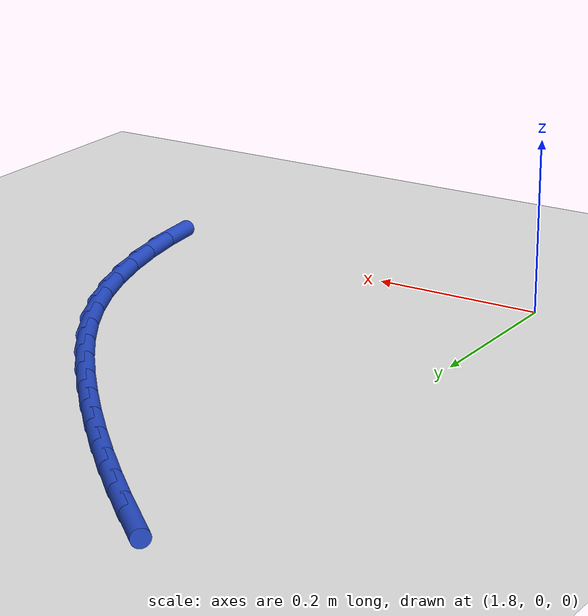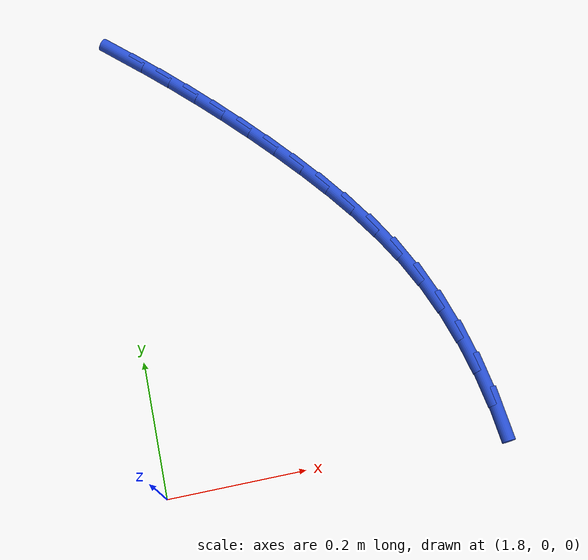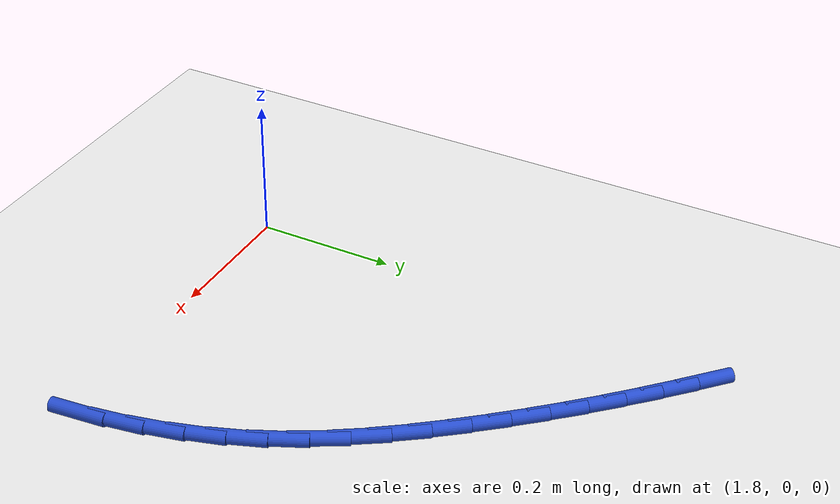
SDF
<sdf version="1.6">
 <world name="default">
  <model name="ground_plane">
   <static>1</static>
   <link name="link">
    <collision name="collision">
     <geometry><plane><normal>0 0 1</normal><size>100 100</size></plane></geometry>
     <surface><friction><ode><mu>100</mu><mu2>50</mu2></ode></friction></surface>
    </collision>
    <visual name="visual">
     <cast_shadows>0</cast_shadows>
     <geometry><plane><normal>0 0 1</normal><size>100 100</size></plane></geometry>
     <material>
      <script><uri>file://media/materials/scripts/gazebo.material</uri><name>Gazebo/WhiteGlow</name></script>
     </material>
    </visual>
   </link>
  </model>
  <model name="line">
   <link name="link_52">
    <pose>1.8495542517893482 0.6951926994139244 0.01 0 1.57 -0.7405786836207218</pose>
    <collision name="collision">
     <geometry><cylinder><radius>0.01</radius><length>0.08</length></cylinder></geometry>
    </collision>
    <visual name="visual">
     <material>
      <script><name>Gazebo/Blue</name><uri>file://media/materials/scripts/gazebo.material</uri></script>
     </material>
     <geometry><cylinder><radius>0.01</radius><length>0.08</length></cylinder></geometry>
    </visual>
   </link>
   <link name="link_53">
    <pose>1.8869917763231836 0.6609691397384637 0.01 0 1.57 -0.7610670528603201</pose>
    <collision name="collision">
     <geometry><cylinder><radius>0.01</radius><length>0.08</length></cylinder></geometry>
    </collision>
    <visual name="visual">
     <material>
      <script><name>Gazebo/Blue</name><uri>file://media/materials/scripts/gazebo.material</uri></script>
     </material>
     <geometry><cylinder><radius>0.01</radius><length>0.08</length></cylinder></geometry>
    </visual>
   </link>
   <link name="link_54">
    <pose>1.9238928565066888 0.6258214325782036 0.01 0 1.57 -0.7821864114757617</pose>
    <collision name="collision">
     <geometry><cylinder><radius>0.01</radius><length>0.08</length></cylinder></geometry>
    </collision>
    <visual name="visual">
     <material>
      <script><name>Gazebo/Blue</name><uri>file://media/materials/scripts/gazebo.material</uri></script>
     </material>
     <geometry><cylinder><radius>0.01</radius><length>0.08</length></cylinder></geometry>
    </visual>
   </link>
   <link name="link_55">
    <pose>1.9601537223264014 0.5897927436731255 0.01 0 1.57 -0.8040414898198078</pose>
    <collision name="collision">
     <geometry><cylinder><radius>0.01</radius><length>0.08</length></cylinder></geometry>
    </collision>
    <visual name="visual">
     <material>
      <script><name>Gazebo/Blue</name><uri>file://media/materials/scripts/gazebo.material</uri></script>
     </material>
     <geometry><cylinder><radius>0.01</radius><length>0.08</length></cylinder></geometry>
    </visual>
   </link>
   <link name="link_56">
    <pose>1.995670603768862 0.5529262387632137 0.01 0 1.57 -0.8267407818204809</pose>
    <collision name="collision">
     <geometry><cylinder><radius>0.01</radius><length>0.08</length></cylinder></geometry>
    </collision>
    <visual name="visual">
     <material>
      <script><name>Gazebo/Blue</name><uri>file://media/materials/scripts/gazebo.material</uri></script>
     </material>
     <geometry><cylinder><radius>0.01</radius><length>0.08</length></cylinder></geometry>
    </visual>
   </link>
   <link name="link_57">
    <pose>2.0303397308206086 0.5152650835884499 0.01 0 1.57 -0.8503975725137466</pose>
    <collision name="collision">
     <geometry><cylinder><radius>0.01</radius><length>0.08</length></cylinder></geometry>
    </collision>
    <visual name="visual">
     <material>
      <script><name>Gazebo/Blue</name><uri>file://media/materials/scripts/gazebo.material</uri></script>
     </material>
     <geometry><cylinder><radius>0.01</radius><length>0.08</length></cylinder></geometry>
    </visual>
   </link>
   <link name="link_58">
    <pose>2.0640573334681798 0.47685244388881726 0.01 0 1.57 -0.8751656335738047</pose>
    <collision name="collision">
     <geometry><cylinder><radius>0.01</radius><length>0.08</length></cylinder></geometry>
    </collision>
    <visual name="visual">
     <material>
      <script><name>Gazebo/Blue</name><uri>file://media/materials/scripts/gazebo.material</uri></script>
     </material>
     <geometry><cylinder><radius>0.01</radius><length>0.08</length></cylinder></geometry>
    </visual>
   </link>
   <link name="link_59">
    <pose>2.096718423111923 0.43773017969713524 0.01 0 1.57 -0.9045605065855138</pose>
    <collision name="collision">
     <geometry><cylinder><radius>0.01</radius><length>0.08</length></cylinder></geometry>
    </collision>
    <visual name="visual">
     <material>
      <script><name>Gazebo/Blue</name><uri>file://media/materials/scripts/gazebo.material</uri></script>
     </material>
     <geometry><cylinder><radius>0.01</radius><length>0.08</length></cylinder></geometry>
    </visual>
   </link>
   <link name="link_60">
    <pose>2.1280992309088007 0.3978128787897084 0.01 0 1.57 -0.9448733173095397</pose>
    <collision name="collision">
     <geometry><cylinder><radius>0.01</radius><length>0.08</length></cylinder></geometry>
    </collision>
    <visual name="visual">
     <material>
      <script><name>Gazebo/Blue</name><uri>file://media/materials/scripts/gazebo.material</uri></script>
     </material>
     <geometry><cylinder><radius>0.01</radius><length>0.08</length></cylinder></geometry>
    </visual>
   </link>
   <link name="link_61">
    <pose>2.157759305373279 0.3567829549038434 0.01 0 1.57 -0.9967294262238342</pose>
    <collision name="collision">
     <geometry><cylinder><radius>0.01</radius><length>0.08</length></cylinder></geometry>
    </collision>
    <visual name="visual">
     <material>
      <script><name>Gazebo/Blue</name><uri>file://media/materials/scripts/gazebo.material</uri></script>
     </material>
     <geometry><cylinder><radius>0.01</radius><length>0.08</length></cylinder></geometry>
    </visual>
   </link>
   <link name="link_62">
    <pose>2.1852351489913104 0.31429812810752183 0.01 0 1.57 -1.0597891518096259</pose>
    <collision name="collision">
     <geometry><cylinder><radius>0.01</radius><length>0.08</length></cylinder></geometry>
    </collision>
    <visual name="visual">
     <material>
      <script><name>Gazebo/Blue</name><uri>file://media/materials/scripts/gazebo.material</uri></script>
     </material>
     <geometry><cylinder><radius>0.01</radius><length>0.08</length></cylinder></geometry>
    </visual>
   </link>
   <link name="link_63">
    <pose>2.2100632642488467 0.27001611846872436 0.01 0 1.57 -1.133007905849926</pose>
    <collision name="collision">
     <geometry><cylinder><radius>0.01</radius><length>0.08</length></cylinder></geometry>
    </collision>
    <visual name="visual">
     <material>
      <script><name>Gazebo/Blue</name><uri>file://media/materials/scripts/gazebo.material</uri></script>
     </material>
     <geometry><cylinder><radius>0.01</radius><length>0.08</length></cylinder></geometry>
    </visual>
   </link>
   <link name="link_64">
    <pose>2.2317874654202026 0.22360497661044437 0.01 0 1.57 -1.2089745309327193</pose>
    <collision name="collision">
     <geometry><cylinder><radius>0.01</radius><length>0.08</length></cylinder></geometry>
    </collision>
    <visual name="visual">
     <material>
      <script><name>Gazebo/Blue</name><uri>file://media/materials/scripts/gazebo.material</uri></script>
     </material>
     <geometry><cylinder><radius>0.01</radius><length>0.08</length></cylinder></geometry>
    </visual>
   </link>
   <link name="link_65">
    <pose>2.2501687117405567 0.17503954922970455 0.01 0 1.57 -1.2806229291643276</pose>
    <collision name="collision">
     <geometry><cylinder><radius>0.01</radius><length>0.08</length></cylinder></geometry>
    </collision>
    <visual name="visual">
     <material>
      <script><name>Gazebo/Blue</name><uri>file://media/materials/scripts/gazebo.material</uri></script>
     </material>
     <geometry><cylinder><radius>0.01</radius><length>0.08</length></cylinder></geometry>
    </visual>
   </link>
   <link name="link_66">
    <pose>2.2652164000929065 0.12464569137613973 0.01 0 1.57 -1.3482940049164027</pose>
    <collision name="collision">
     <geometry><cylinder><radius>0.01</radius><length>0.08</length></cylinder></geometry>
    </collision>
    <visual name="visual">
     <material>
      <script><name>Gazebo/Blue</name><uri>file://media/materials/scripts/gazebo.material</uri></script>
     </material>
     <geometry><cylinder><radius>0.01</radius><length>0.08</length></cylinder></geometry>
    </visual>
   </link>
   <link name="link_67">
    <pose>2.276953533265975 0.0727684813797472 0.01 0 1.57 -1.4127461443588918</pose>
    <collision name="collision">
     <geometry><cylinder><radius>0.01</radius><length>0.08</length></cylinder></geometry>
    </collision>
    <visual name="visual">
     <material>
      <script><name>Gazebo/Blue</name><uri>file://media/materials/scripts/gazebo.material</uri></script>
     </material>
     <geometry><cylinder><radius>0.01</radius><length>0.08</length></cylinder></geometry>
    </visual>
   </link>
   <link name="link_68">
    <pose>2.285403114048489 0.01975299757052293 0.01 0 1.57 -1.4747324241100883</pose>
    <collision name="collision">
     <geometry><cylinder><radius>0.01</radius><length>0.08</length></cylinder></geometry>
    </collision>
    <visual name="visual">
     <material>
      <script><name>Gazebo/Blue</name><uri>file://media/materials/scripts/gazebo.material</uri></script>
     </material>
     <geometry><cylinder><radius>0.01</radius><length>0.08</length></cylinder></geometry>
    </visual>
   </link>
  </model>
 </world>
</sdf>
